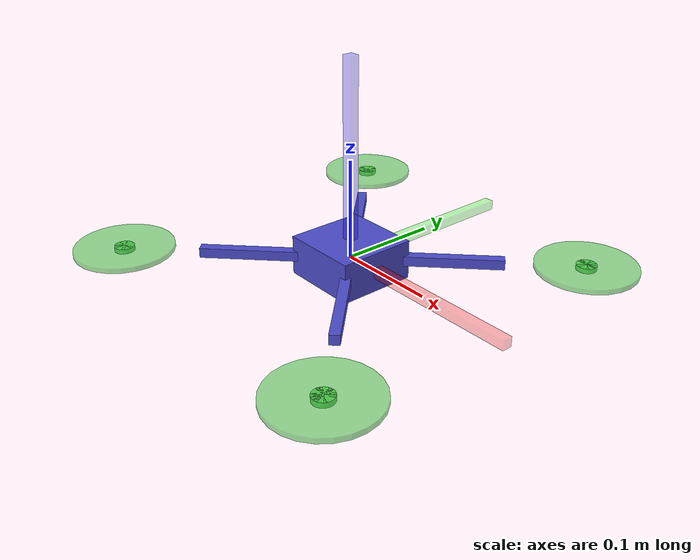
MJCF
<!--
Quadcopter with x configuration.
Front: Along body X-axis
-->

<mujoco model="quadrotor_x">
    <!--Note how inertiafromgeom is false, we must specify mass and inertia properties later!-->
    <compiler angle="radian" inertiafromgeom="false" coordinate="local"/>

    <!--Was originally viscosity=1e-5, integrator=RK4-->
    <option	timestep="0.1" gravity="0 0 -9.81" density="1" viscosity="1e-5" integrator="RK4"/>

    <!-- for rendering at 720p -->
    <visual>
        <global offheight="720" offwidth="1280"/>
    </visual>

    <default>
        <joint armature="1" damping="1" limited="true"/>
        <geom conaffinity="0" condim="3" density="5.0" friction="1 0.5 0.5" margin="0.01" rgba="0.8 0.6 0.4 1"/>
    </default>

    <default>
        <joint armature="1" damping="1" limited="true"/>
        <geom conaffinity="0" condim="3" density="5.0" friction="1 0.5 0.5" margin="0.01" rgba="0.8 0.6 0.4 1"/>
    </default>

    <asset>
        <texture builtin="gradient" type="skybox" height="100" width="100" rgb1="1 1 1" rgb2="0 0 0"/>
        <texture name="texgeom" builtin="flat" height="1278" mark="cross" markrgb="1 1 1" random="0.01" rgb1="0.8 0.6 0.4" rgb2="0.8 0.6 0.4" type="cube" width="127"/>
        <texture name="texplane" builtin="checker" height="100" width="100" rgb1="0 0 0" rgb2="0.8 0.8 0.8" type="2d"/>
        <material name="MatPlane" reflectance="0.5" shininess="1" specular="1" texrepeat="60 60" texture="texplane"/>
        <material name="geom" texture="texgeom" texuniform="true"/>
    </asset>

    <worldbody>
        <light cutoff="100" diffuse="1 1 1" dir="-0 0 -1.3" directional="true" exponent="1" pos="0 0 1.3" specular=".1 .1 .1"/>
        <geom conaffinity="1" condim="3" material="MatPlane" name="floor" pos="0 0 -15" rgba="0.4 0.3 0.3 1" size="5 5 0.2" type="plane"/>

        <body name="core" pos="0 0 0">
            <inertial pos="0 0 0" mass="1.2" diaginertia="0.0123 0.0123 0.0224"/>
            <joint name="root" type="free" damping="0" armature="0" pos="0 0 0" limited="false"/>
			<camera euler="0 0 0" fovy="40" name="rgb" pos="0 0 5"></camera>
            <geom name="core_geom" type="box" pos="0 0 0" quat="1 0 0 0" size=".04 .04 .02" rgba=".3 .3 .8 1" mass="0"/>

            <geom name="arm_front_left" type="box" pos=".07 .07 0" size=".05 .005 .005" quat=".924 0 0 .383" rgba=".3 .3 .8 1" mass="0"/>
            <geom name="arm_front_right" type="box" pos=".07 -.07 0" size=".05 .005 .005" quat=".383 0 0 .924" rgba=".3 .3 .8 1" mass="0"/>
            <geom name="arm_back_right" type="box" pos="-.07 -.07 0" size=".05 .005 .005" quat="-.383 0 0 .924" rgba=".3 .3 .8 1" mass="0"/>
            <geom name="arm_back_left" type="box" pos="-.07 .07 0" size=".05 .005 .005" quat=".924 0 0 -.383" rgba=".3 .3 .8 1" mass="0"/>

            <site name="motor_front_left" type="cylinder" pos=".16 .16 0" size=".01 .0025" quat="1 0 0 0" rgba=".3 .8 .3 1"/>
            <site name="motor_front_right" type="cylinder" pos=".16 -.16 0" size=".01 .0025" quat="1 0 0 0" rgba=".3 .8 .3 1"/>
            <site name="motor_back_right" type="cylinder" pos="-.16 -.16 0" size=".01 .0025" quat="1 0 0 0" rgba=".3 .8 .3 1"/>
            <site name="motor_back_left" type="cylinder" pos="-.16  .16 0" size=".01 .0025" quat="1 0 0 0" rgba=".3 .8 .3 1"/>

            <geom name="thruster_front_left" type="cylinder" pos=".16 .16 0" size=".05 .0025" quat="1 0 0 0" rgba=".3 .8 .3 0.6" mass="0"/>
            <geom name="thruster_front_right" type="cylinder" pos=".16 -.16 0" size=".05 .0025" quat="1 0 0 0" rgba=".3 .8 .3 0.6" mass="0"/>
            <geom name="thruster_back_right" type="cylinder" pos="-.16 -.16 0" size=".05 .0025" quat="1 0 0 0" rgba=".3 .8 .3 0.6" mass="0"/>
            <geom name="thruster_back_left" type="cylinder" pos="-.16 .16 0" size=".05 .0025" quat="1 0 0 0" rgba=".3 .8 .3 0.6" mass="0"/>

            <site name="x_axis" type="box" pos=".1 0 0" size=".1 .005 .005" quat="1 0 0 0" rgba="1 0 0 0.3"/>
            <site name="y_axis" type="box" pos="0 .1 0" size=".1 .005 .005" quat=".707 0 0 .707" rgba="0 1 0 0.3"/>
            <site name="z_axis" type="box" pos="0 0 .1" size=".1 .005 .005" quat="-.707 0 .707 0" rgba="0 0 1 0.3"/>

        </body>

    </worldbody>

    <actuator>
        <motor ctrllimited="true" ctrlrange="0.060525 9.206525000000001" gear="0 0 1 0 0 -0.01516728624535316" site="motor_front_left"/>
        <motor ctrllimited="true" ctrlrange="0.060525 9.206525000000001" gear="0 0 1 0 0 0.01516728624535316" site="motor_front_right"/>
        <motor ctrllimited="true" ctrlrange="0.060525 9.206525000000001" gear="0 0 1 0 0 -0.01516728624535316" site="motor_back_right"/>
        <motor ctrllimited="true" ctrlrange="0.060525 9.206525000000001" gear="0 0 1 0 0 0.01516728624535316" site="motor_back_left"/>
    </actuator>

</mujoco>
